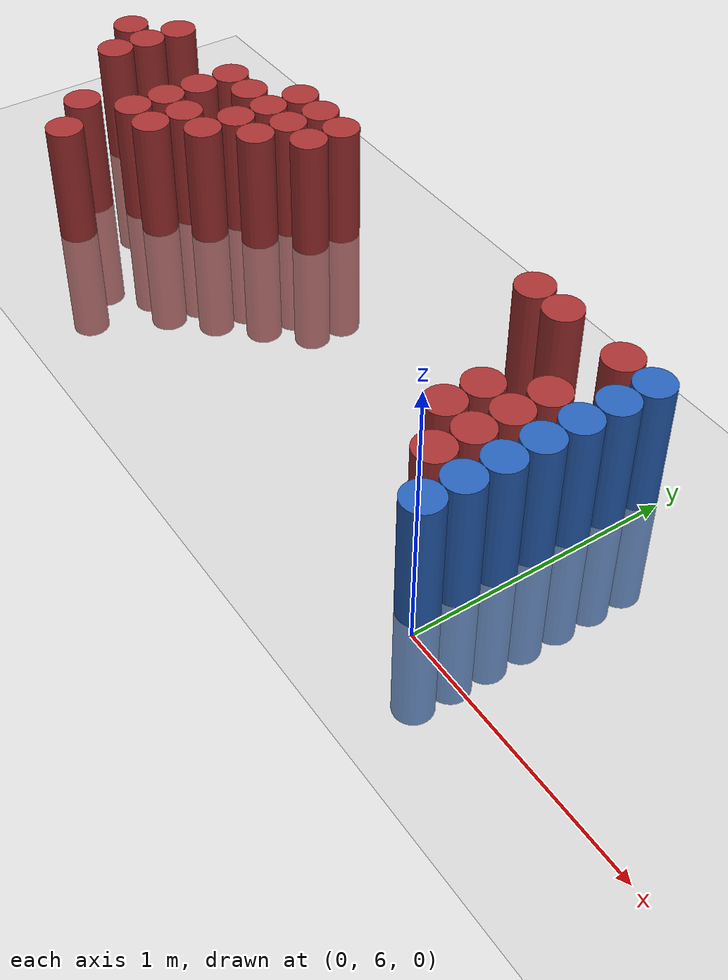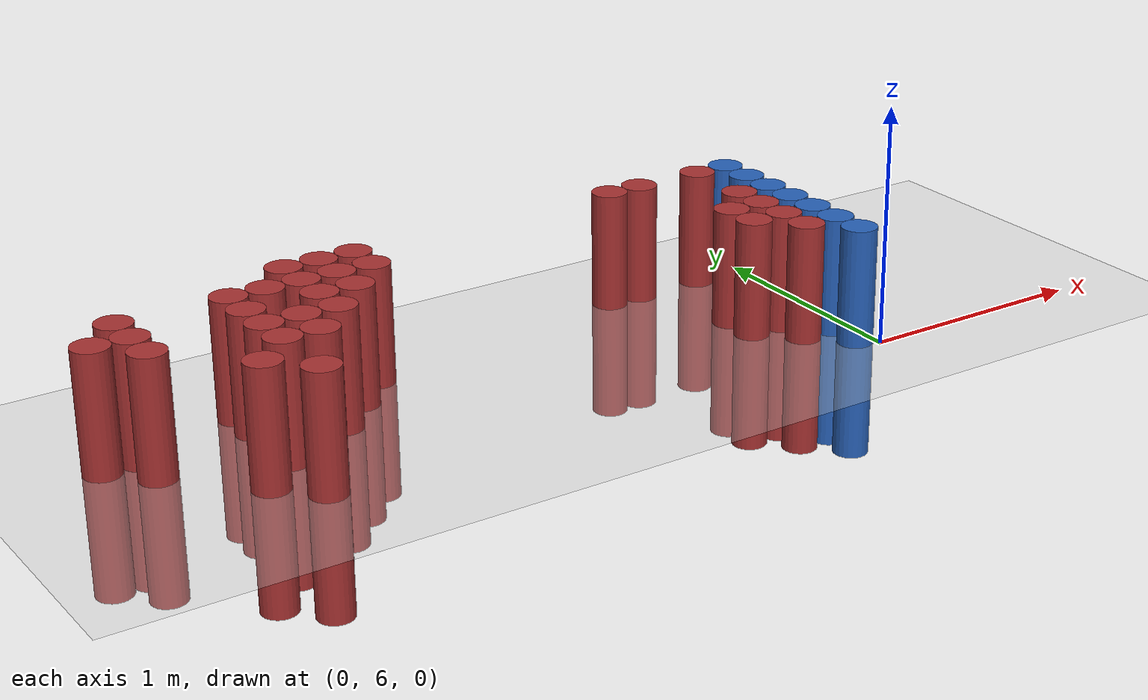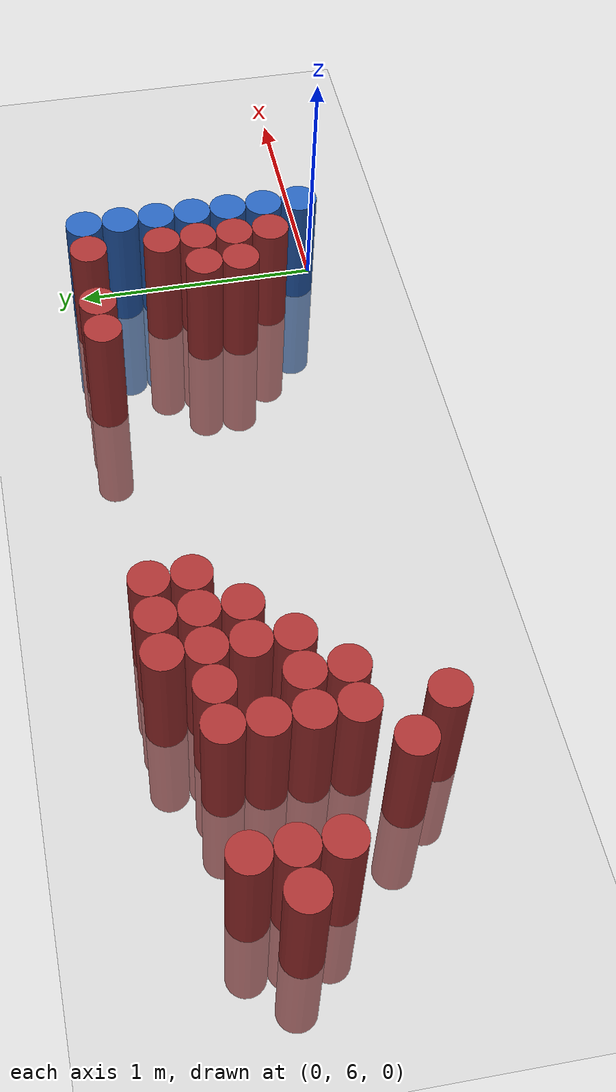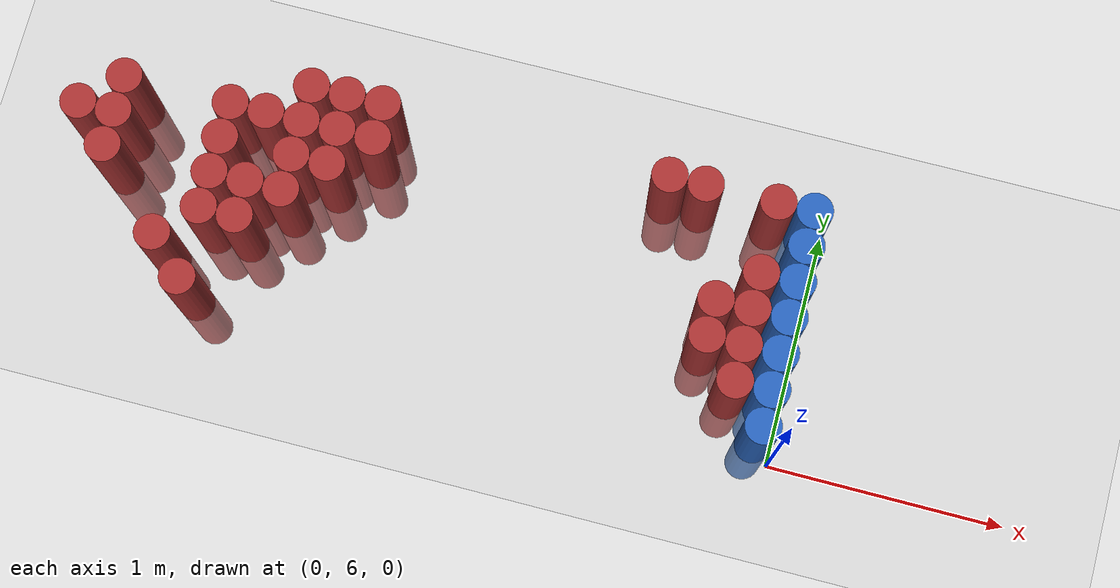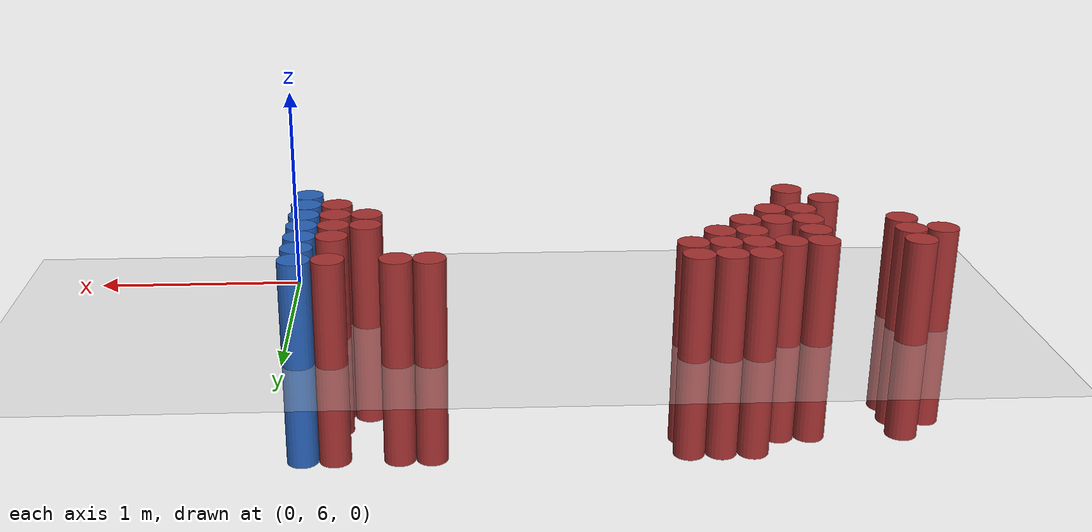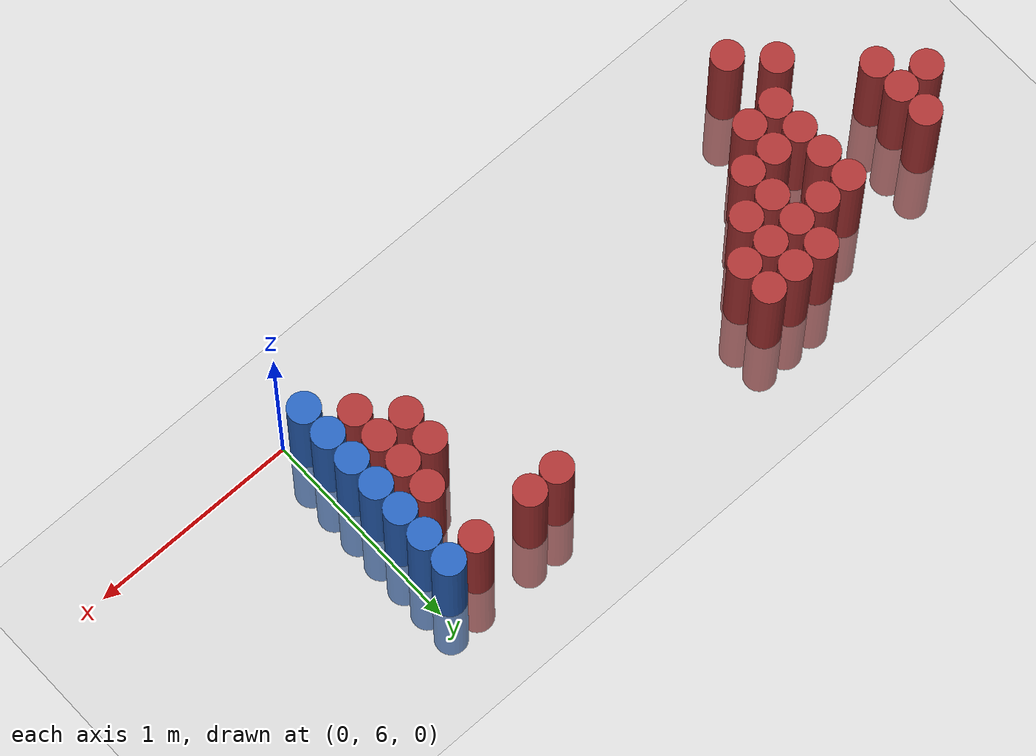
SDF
<sdf version="1.6">
 <world name="default">
  <model name="ground_plane">
   <static>1</static>
   <link name="link">
    <collision name="collision">
     <geometry><plane><normal>0 0 1</normal><size>100 100</size></plane></geometry>
     <surface><friction><ode><mu>100</mu><mu2>50</mu2></ode></friction></surface>
    </collision>
    <visual name="visual">
     <cast_shadows>0</cast_shadows>
     <geometry><plane><normal>0 0 1</normal><size>100 100</size></plane></geometry>
     <material>
      <script><uri>file://media/materials/scripts/gazebo.material</uri><name>Gazebo/Grey</name></script>
     </material>
    </visual>
   </link>
  </model>
  <model name="unit_cylinder_198">
   <static>1</static>
   <pose>-3.075000 6.675000 0.000000 0.000000 0.000000 0.000000</pose>
   <link name="link">
    <inertial>
     <mass>1</mass>
     <inertia><ixx>0.145833</ixx><ixy>0</ixy><ixz>0</ixz><iyy>0.145833</iyy><iyz>0</iyz><izz>0.125</izz></inertia>
    </inertial>
    <collision name="collision">
     <geometry><cylinder><radius>0.075000</radius><length>1</length></cylinder></geometry>
    </collision>
    <visual name="visual">
     <geometry><cylinder><radius>0.075000</radius><length>1</length></cylinder></geometry>
     <material>
      <ambient>0.648000 0.192000 0.192000 1</ambient>
      <diffuse>0.648000 0.192000 0.192000 1</diffuse>
     </material>
     <material>
      <script><name>Gazebo/Grey</name><uri>file://media/materials/scripts/gazebo.material</uri></script>
     </material>
    </visual>
    <sensor name="sensor_contact" type="contact"><contact><collision>collision</collision></contact></sensor>
   </link>
   <plugin filename="gz-sim-touchplugin-system" name="gz::sim::systems::TouchPlugin">
    <target>robot</target>
    <namespace>robot</namespace>
    <time>0.001</time>
    <enabled>true</enabled>
   </plugin>
  </model>
  <model name="unit_cylinder_204">
   <static>1</static>
   <pose>-2.925000 6.525000 0.000000 0.000000 0.000000 0.000000</pose>
   <link name="link">
    <inertial>
     <mass>1</mass>
     <inertia><ixx>0.145833</ixx><ixy>0</ixy><ixz>0</ixz><iyy>0.145833</iyy><iyz>0</iyz><izz>0.125</izz></inertia>
    </inertial>
    <collision name="collision">
     <geometry><cylinder><radius>0.075000</radius><length>1</length></cylinder></geometry>
    </collision>
    <visual name="visual">
     <geometry><cylinder><radius>0.075000</radius><length>1</length></cylinder></geometry>
     <material>
      <ambient>0.648000 0.192000 0.192000 1</ambient>
      <diffuse>0.648000 0.192000 0.192000 1</diffuse>
     </material>
     <material>
      <script><name>Gazebo/Grey</name><uri>file://media/materials/scripts/gazebo.material</uri></script>
     </material>
    </visual>
    <sensor name="sensor_contact" type="contact"><contact><collision>collision</collision></contact></sensor>
   </link>
   <plugin filename="gz-sim-touchplugin-system" name="gz::sim::systems::TouchPlugin">
    <target>robot</target>
    <namespace>robot</namespace>
    <time>0.001</time>
    <enabled>true</enabled>
   </plugin>
  </model>
  <model name="unit_cylinder_205">
   <static>1</static>
   <pose>-2.925000 6.675000 0.000000 0.000000 0.000000 0.000000</pose>
   <link name="link">
    <inertial>
     <mass>1</mass>
     <inertia><ixx>0.145833</ixx><ixy>0</ixy><ixz>0</ixz><iyy>0.145833</iyy><iyz>0</iyz><izz>0.125</izz></inertia>
    </inertial>
    <collision name="collision">
     <geometry><cylinder><radius>0.075000</radius><length>1</length></cylinder></geometry>
    </collision>
    <visual name="visual">
     <geometry><cylinder><radius>0.075000</radius><length>1</length></cylinder></geometry>
     <material>
      <ambient>0.648000 0.192000 0.192000 1</ambient>
      <diffuse>0.648000 0.192000 0.192000 1</diffuse>
     </material>
     <material>
      <script><name>Gazebo/Grey</name><uri>file://media/materials/scripts/gazebo.material</uri></script>
     </material>
    </visual>
    <sensor name="sensor_contact" type="contact"><contact><collision>collision</collision></contact></sensor>
   </link>
   <plugin filename="gz-sim-touchplugin-system" name="gz::sim::systems::TouchPlugin">
    <target>robot</target>
    <namespace>robot</namespace>
    <time>0.001</time>
    <enabled>true</enabled>
   </plugin>
  </model>
  <model name="unit_cylinder_206">
   <static>1</static>
   <pose>-2.925000 6.825000 0.000000 0.000000 0.000000 0.000000</pose>
   <link name="link">
    <inertial>
     <mass>1</mass>
     <inertia><ixx>0.145833</ixx><ixy>0</ixy><ixz>0</ixz><iyy>0.145833</iyy><iyz>0</iyz><izz>0.125</izz></inertia>
    </inertial>
    <collision name="collision">
     <geometry><cylinder><radius>0.075000</radius><length>1</length></cylinder></geometry>
    </collision>
    <visual name="visual">
     <geometry><cylinder><radius>0.075000</radius><length>1</length></cylinder></geometry>
     <material>
      <ambient>0.648000 0.192000 0.192000 1</ambient>
      <diffuse>0.648000 0.192000 0.192000 1</diffuse>
     </material>
     <material>
      <script><name>Gazebo/Grey</name><uri>file://media/materials/scripts/gazebo.material</uri></script>
     </material>
    </visual>
    <sensor name="sensor_contact" type="contact"><contact><collision>collision</collision></contact></sensor>
   </link>
   <plugin filename="gz-sim-touchplugin-system" name="gz::sim::systems::TouchPlugin">
    <target>robot</target>
    <namespace>robot</namespace>
    <time>0.001</time>
    <enabled>true</enabled>
   </plugin>
  </model>
  <model name="unit_cylinder_217">
   <static>1</static>
   <pose>-2.625000 6.225000 0.000000 0.000000 0.000000 0.000000</pose>
   <link name="link">
    <inertial>
     <mass>1</mass>
     <inertia><ixx>0.145833</ixx><ixy>0</ixy><ixz>0</ixz><iyy>0.145833</iyy><iyz>0</iyz><izz>0.125</izz></inertia>
    </inertial>
    <collision name="collision">
     <geometry><cylinder><radius>0.075000</radius><length>1</length></cylinder></geometry>
    </collision>
    <visual name="visual">
     <geometry><cylinder><radius>0.075000</radius><length>1</length></cylinder></geometry>
     <material>
      <ambient>0.648000 0.192000 0.192000 1</ambient>
      <diffuse>0.648000 0.192000 0.192000 1</diffuse>
     </material>
     <material>
      <script><name>Gazebo/Grey</name><uri>file://media/materials/scripts/gazebo.material</uri></script>
     </material>
    </visual>
    <sensor name="sensor_contact" type="contact"><contact><collision>collision</collision></contact></sensor>
   </link>
   <plugin filename="gz-sim-touchplugin-system" name="gz::sim::systems::TouchPlugin">
    <target>robot</target>
    <namespace>robot</namespace>
    <time>0.001</time>
    <enabled>true</enabled>
   </plugin>
  </model>
  <model name="unit_cylinder_228">
   <static>1</static>
   <pose>-2.475000 6.075000 0.000000 0.000000 0.000000 0.000000</pose>
   <link name="link">
    <inertial>
     <mass>1</mass>
     <inertia><ixx>0.145833</ixx><ixy>0</ixy><ixz>0</ixz><iyy>0.145833</iyy><iyz>0</iyz><izz>0.125</izz></inertia>
    </inertial>
    <collision name="collision">
     <geometry><cylinder><radius>0.075000</radius><length>1</length></cylinder></geometry>
    </collision>
    <visual name="visual">
     <geometry><cylinder><radius>0.075000</radius><length>1</length></cylinder></geometry>
     <material>
      <ambient>0.648000 0.192000 0.192000 1</ambient>
      <diffuse>0.648000 0.192000 0.192000 1</diffuse>
     </material>
     <material>
      <script><name>Gazebo/Grey</name><uri>file://media/materials/scripts/gazebo.material</uri></script>
     </material>
    </visual>
    <sensor name="sensor_contact" type="contact"><contact><collision>collision</collision></contact></sensor>
   </link>
   <plugin filename="gz-sim-touchplugin-system" name="gz::sim::systems::TouchPlugin">
    <target>robot</target>
    <namespace>robot</namespace>
    <time>0.001</time>
    <enabled>true</enabled>
   </plugin>
  </model>
  <model name="unit_cylinder_229">
   <static>1</static>
   <pose>-2.475000 6.375000 0.000000 0.000000 0.000000 0.000000</pose>
   <link name="link">
    <inertial>
     <mass>1</mass>
     <inertia><ixx>0.145833</ixx><ixy>0</ixy><ixz>0</ixz><iyy>0.145833</iyy><iyz>0</iyz><izz>0.125</izz></inertia>
    </inertial>
    <collision name="collision">
     <geometry><cylinder><radius>0.075000</radius><length>1</length></cylinder></geometry>
    </collision>
    <visual name="visual">
     <geometry><cylinder><radius>0.075000</radius><length>1</length></cylinder></geometry>
     <material>
      <ambient>0.648000 0.192000 0.192000 1</ambient>
      <diffuse>0.648000 0.192000 0.192000 1</diffuse>
     </material>
     <material>
      <script><name>Gazebo/Grey</name><uri>file://media/materials/scripts/gazebo.material</uri></script>
     </material>
    </visual>
    <sensor name="sensor_contact" type="contact"><contact><collision>collision</collision></contact></sensor>
   </link>
   <plugin filename="gz-sim-touchplugin-system" name="gz::sim::systems::TouchPlugin">
    <target>robot</target>
    <namespace>robot</namespace>
    <time>0.001</time>
    <enabled>true</enabled>
   </plugin>
  </model>
  <model name="unit_cylinder_230">
   <static>1</static>
   <pose>-2.475000 6.525000 0.000000 0.000000 0.000000 0.000000</pose>
   <link name="link">
    <inertial>
     <mass>1</mass>
     <inertia><ixx>0.145833</ixx><ixy>0</ixy><ixz>0</ixz><iyy>0.145833</iyy><iyz>0</iyz><izz>0.125</izz></inertia>
    </inertial>
    <collision name="collision">
     <geometry><cylinder><radius>0.075000</radius><length>1</length></cylinder></geometry>
    </collision>
    <visual name="visual">
     <geometry><cylinder><radius>0.075000</radius><length>1</length></cylinder></geometry>
     <material>
      <ambient>0.648000 0.192000 0.192000 1</ambient>
      <diffuse>0.648000 0.192000 0.192000 1</diffuse>
     </material>
     <material>
      <script><name>Gazebo/Grey</name><uri>file://media/materials/scripts/gazebo.material</uri></script>
     </material>
    </visual>
    <sensor name="sensor_contact" type="contact"><contact><collision>collision</collision></contact></sensor>
   </link>
   <plugin filename="gz-sim-touchplugin-system" name="gz::sim::systems::TouchPlugin">
    <target>robot</target>
    <namespace>robot</namespace>
    <time>0.001</time>
    <enabled>true</enabled>
   </plugin>
  </model>
  <model name="unit_cylinder_231">
   <static>1</static>
   <pose>-2.475000 6.675000 0.000000 0.000000 0.000000 0.000000</pose>
   <link name="link">
    <inertial>
     <mass>1</mass>
     <inertia><ixx>0.145833</ixx><ixy>0</ixy><ixz>0</ixz><iyy>0.145833</iyy><iyz>0</iyz><izz>0.125</izz></inertia>
    </inertial>
    <collision name="collision">
     <geometry><cylinder><radius>0.075000</radius><length>1</length></cylinder></geometry>
    </collision>
    <visual name="visual">
     <geometry><cylinder><radius>0.075000</radius><length>1</length></cylinder></geometry>
     <material>
      <ambient>0.648000 0.192000 0.192000 1</ambient>
      <diffuse>0.648000 0.192000 0.192000 1</diffuse>
     </material>
     <material>
      <script><name>Gazebo/Grey</name><uri>file://media/materials/scripts/gazebo.material</uri></script>
     </material>
    </visual>
    <sensor name="sensor_contact" type="contact"><contact><collision>collision</collision></contact></sensor>
   </link>
   <plugin filename="gz-sim-touchplugin-system" name="gz::sim::systems::TouchPlugin">
    <target>robot</target>
    <namespace>robot</namespace>
    <time>0.001</time>
    <enabled>true</enabled>
   </plugin>
  </model>
  <model name="unit_cylinder_232">
   <static>1</static>
   <pose>-2.475000 6.825000 0.000000 0.000000 0.000000 0.000000</pose>
   <link name="link">
    <inertial>
     <mass>1</mass>
     <inertia><ixx>0.145833</ixx><ixy>0</ixy><ixz>0</ixz><iyy>0.145833</iyy><iyz>0</iyz><izz>0.125</izz></inertia>
    </inertial>
    <collision name="collision">
     <geometry><cylinder><radius>0.075000</radius><length>1</length></cylinder></geometry>
    </collision>
    <visual name="visual">
     <geometry><cylinder><radius>0.075000</radius><length>1</length></cylinder></geometry>
     <material>
      <ambient>0.648000 0.192000 0.192000 1</ambient>
      <diffuse>0.648000 0.192000 0.192000 1</diffuse>
     </material>
     <material>
      <script><name>Gazebo/Grey</name><uri>file://media/materials/scripts/gazebo.material</uri></script>
     </material>
    </visual>
    <sensor name="sensor_contact" type="contact"><contact><collision>collision</collision></contact></sensor>
   </link>
   <plugin filename="gz-sim-touchplugin-system" name="gz::sim::systems::TouchPlugin">
    <target>robot</target>
    <namespace>robot</namespace>
    <time>0.001</time>
    <enabled>true</enabled>
   </plugin>
  </model>
  <model name="unit_cylinder_241">
   <static>1</static>
   <pose>-2.325000 6.375000 0.000000 0.000000 0.000000 0.000000</pose>
   <link name="link">
    <inertial>
     <mass>1</mass>
     <inertia><ixx>0.145833</ixx><ixy>0</ixy><ixz>0</ixz><iyy>0.145833</iyy><iyz>0</iyz><izz>0.125</izz></inertia>
    </inertial>
    <collision name="collision">
     <geometry><cylinder><radius>0.075000</radius><length>1</length></cylinder></geometry>
    </collision>
    <visual name="visual">
     <geometry><cylinder><radius>0.075000</radius><length>1</length></cylinder></geometry>
     <material>
      <ambient>0.648000 0.192000 0.192000 1</ambient>
      <diffuse>0.648000 0.192000 0.192000 1</diffuse>
     </material>
     <material>
      <script><name>Gazebo/Grey</name><uri>file://media/materials/scripts/gazebo.material</uri></script>
     </material>
    </visual>
    <sensor name="sensor_contact" type="contact"><contact><collision>collision</collision></contact></sensor>
   </link>
   <plugin filename="gz-sim-touchplugin-system" name="gz::sim::systems::TouchPlugin">
    <target>robot</target>
    <namespace>robot</namespace>
    <time>0.001</time>
    <enabled>true</enabled>
   </plugin>
  </model>
  <model name="unit_cylinder_242">
   <static>1</static>
   <pose>-2.325000 6.525000 0.000000 0.000000 0.000000 0.000000</pose>
   <link name="link">
    <inertial>
     <mass>1</mass>
     <inertia><ixx>0.145833</ixx><ixy>0</ixy><ixz>0</ixz><iyy>0.145833</iyy><iyz>0</iyz><izz>0.125</izz></inertia>
    </inertial>
    <collision name="collision">
     <geometry><cylinder><radius>0.075000</radius><length>1</length></cylinder></geometry>
    </collision>
    <visual name="visual">
     <geometry><cylinder><radius>0.075000</radius><length>1</length></cylinder></geometry>
     <material>
      <ambient>0.648000 0.192000 0.192000 1</ambient>
      <diffuse>0.648000 0.192000 0.192000 1</diffuse>
     </material>
     <material>
      <script><name>Gazebo/Grey</name><uri>file://media/materials/scripts/gazebo.material</uri></script>
     </material>
    </visual>
    <sensor name="sensor_contact" type="contact"><contact><collision>collision</collision></contact></sensor>
   </link>
   <plugin filename="gz-sim-touchplugin-system" name="gz::sim::systems::TouchPlugin">
    <target>robot</target>
    <namespace>robot</namespace>
    <time>0.001</time>
    <enabled>true</enabled>
   </plugin>
  </model>
  <model name="unit_cylinder_243">
   <static>1</static>
   <pose>-2.325000 6.825000 0.000000 0.000000 0.000000 0.000000</pose>
   <link name="link">
    <inertial>
     <mass>1</mass>
     <inertia><ixx>0.145833</ixx><ixy>0</ixy><ixz>0</ixz><iyy>0.145833</iyy><iyz>0</iyz><izz>0.125</izz></inertia>
    </inertial>
    <collision name="collision">
     <geometry><cylinder><radius>0.075000</radius><length>1</length></cylinder></geometry>
    </collision>
    <visual name="visual">
     <geometry><cylinder><radius>0.075000</radius><length>1</length></cylinder></geometry>
     <material>
      <ambient>0.648000 0.192000 0.192000 1</ambient>
      <diffuse>0.648000 0.192000 0.192000 1</diffuse>
     </material>
     <material>
      <script><name>Gazebo/Grey</name><uri>file://media/materials/scripts/gazebo.material</uri></script>
     </material>
    </visual>
    <sensor name="sensor_contact" type="contact"><contact><collision>collision</collision></contact></sensor>
   </link>
   <plugin filename="gz-sim-touchplugin-system" name="gz::sim::systems::TouchPlugin">
    <target>robot</target>
    <namespace>robot</namespace>
    <time>0.001</time>
    <enabled>true</enabled>
   </plugin>
  </model>
  <model name="unit_cylinder_249">
   <static>1</static>
   <pose>-2.175000 6.525000 0.000000 0.000000 0.000000 0.000000</pose>
   <link name="link">
    <inertial>
     <mass>1</mass>
     <inertia><ixx>0.145833</ixx><ixy>0</ixy><ixz>0</ixz><iyy>0.145833</iyy><iyz>0</iyz><izz>0.125</izz></inertia>
    </inertial>
    <collision name="collision">
     <geometry><cylinder><radius>0.075000</radius><length>1</length></cylinder></geometry>
    </collision>
    <visual name="visual">
     <geometry><cylinder><radius>0.075000</radius><length>1</length></cylinder></geometry>
     <material>
      <ambient>0.648000 0.192000 0.192000 1</ambient>
      <diffuse>0.648000 0.192000 0.192000 1</diffuse>
     </material>
     <material>
      <script><name>Gazebo/Grey</name><uri>file://media/materials/scripts/gazebo.material</uri></script>
     </material>
    </visual>
    <sensor name="sensor_contact" type="contact"><contact><collision>collision</collision></contact></sensor>
   </link>
   <plugin filename="gz-sim-touchplugin-system" name="gz::sim::systems::TouchPlugin">
    <target>robot</target>
    <namespace>robot</namespace>
    <time>0.001</time>
    <enabled>true</enabled>
   </plugin>
  </model>
  <model name="unit_cylinder_250">
   <static>1</static>
   <pose>-2.175000 6.675000 0.000000 0.000000 0.000000 0.000000</pose>
   <link name="link">
    <inertial>
     <mass>1</mass>
     <inertia><ixx>0.145833</ixx><ixy>0</ixy><ixz>0</ixz><iyy>0.145833</iyy><iyz>0</iyz><izz>0.125</izz></inertia>
    </inertial>
    <collision name="collision">
     <geometry><cylinder><radius>0.075000</radius><length>1</length></cylinder></geometry>
    </collision>
    <visual name="visual">
     <geometry><cylinder><radius>0.075000</radius><length>1</length></cylinder></geometry>
     <material>
      <ambient>0.648000 0.192000 0.192000 1</ambient>
      <diffuse>0.648000 0.192000 0.192000 1</diffuse>
     </material>
     <material>
      <script><name>Gazebo/Grey</name><uri>file://media/materials/scripts/gazebo.material</uri></script>
     </material>
    </visual>
    <sensor name="sensor_contact" type="contact"><contact><collision>collision</collision></contact></sensor>
   </link>
   <plugin filename="gz-sim-touchplugin-system" name="gz::sim::systems::TouchPlugin">
    <target>robot</target>
    <namespace>robot</namespace>
    <time>0.001</time>
    <enabled>true</enabled>
   </plugin>
  </model>
  <model name="unit_cylinder_251">
   <static>1</static>
   <pose>-2.175000 6.825000 0.000000 0.000000 0.000000 0.000000</pose>
   <link name="link">
    <inertial>
     <mass>1</mass>
     <inertia><ixx>0.145833</ixx><ixy>0</ixy><ixz>0</ixz><iyy>0.145833</iyy><iyz>0</iyz><izz>0.125</izz></inertia>
    </inertial>
    <collision name="collision">
     <geometry><cylinder><radius>0.075000</radius><length>1</length></cylinder></geometry>
    </collision>
    <visual name="visual">
     <geometry><cylinder><radius>0.075000</radius><length>1</length></cylinder></geometry>
     <material>
      <ambient>0.648000 0.192000 0.192000 1</ambient>
      <diffuse>0.648000 0.192000 0.192000 1</diffuse>
     </material>
     <material>
      <script><name>Gazebo/Grey</name><uri>file://media/materials/scripts/gazebo.material</uri></script>
     </material>
    </visual>
    <sensor name="sensor_contact" type="contact"><contact><collision>collision</collision></contact></sensor>
   </link>
   <plugin filename="gz-sim-touchplugin-system" name="gz::sim::systems::TouchPlugin">
    <target>robot</target>
    <namespace>robot</namespace>
    <time>0.001</time>
    <enabled>true</enabled>
   </plugin>
  </model>
  <model name="unit_cylinder_252">
   <static>1</static>
   <pose>-2.175000 6.975000 0.000000 0.000000 0.000000 0.000000</pose>
   <link name="link">
    <inertial>
     <mass>1</mass>
     <inertia><ixx>0.145833</ixx><ixy>0</ixy><ixz>0</ixz><iyy>0.145833</iyy><iyz>0</iyz><izz>0.125</izz></inertia>
    </inertial>
    <collision name="collision">
     <geometry><cylinder><radius>0.075000</radius><length>1</length></cylinder></geometry>
    </collision>
    <visual name="visual">
     <geometry><cylinder><radius>0.075000</radius><length>1</length></cylinder></geometry>
     <material>
      <ambient>0.648000 0.192000 0.192000 1</ambient>
      <diffuse>0.648000 0.192000 0.192000 1</diffuse>
     </material>
     <material>
      <script><name>Gazebo/Grey</name><uri>file://media/materials/scripts/gazebo.material</uri></script>
     </material>
    </visual>
    <sensor name="sensor_contact" type="contact"><contact><collision>collision</collision></contact></sensor>
   </link>
   <plugin filename="gz-sim-touchplugin-system" name="gz::sim::systems::TouchPlugin">
    <target>robot</target>
    <namespace>robot</namespace>
    <time>0.001</time>
    <enabled>true</enabled>
   </plugin>
  </model>
  <model name="unit_cylinder_254">
   <static>1</static>
   <pose>-2.025000 6.675000 0.000000 0.000000 0.000000 0.000000</pose>
   <link name="link">
    <inertial>
     <mass>1</mass>
     <inertia><ixx>0.145833</ixx><ixy>0</ixy><ixz>0</ixz><iyy>0.145833</iyy><iyz>0</iyz><izz>0.125</izz></inertia>
    </inertial>
    <collision name="collision">
     <geometry><cylinder><radius>0.075000</radius><length>1</length></cylinder></geometry>
    </collision>
    <visual name="visual">
     <geometry><cylinder><radius>0.075000</radius><length>1</length></cylinder></geometry>
     <material>
      <ambient>0.648000 0.192000 0.192000 1</ambient>
      <diffuse>0.648000 0.192000 0.192000 1</diffuse>
     </material>
     <material>
      <script><name>Gazebo/Grey</name><uri>file://media/materials/scripts/gazebo.material</uri></script>
     </material>
    </visual>
    <sensor name="sensor_contact" type="contact"><contact><collision>collision</collision></contact></sensor>
   </link>
   <plugin filename="gz-sim-touchplugin-system" name="gz::sim::systems::TouchPlugin">
    <target>robot</target>
    <namespace>robot</namespace>
    <time>0.001</time>
    <enabled>true</enabled>
   </plugin>
  </model>
  <model name="unit_cylinder_255">
   <static>1</static>
   <pose>-2.025000 6.825000 0.000000 0.000000 0.000000 0.000000</pose>
   <link name="link">
    <inertial>
     <mass>1</mass>
     <inertia><ixx>0.145833</ixx><ixy>0</ixy><ixz>0</ixz><iyy>0.145833</iyy><iyz>0</iyz><izz>0.125</izz></inertia>
    </inertial>
    <collision name="collision">
     <geometry><cylinder><radius>0.075000</radius><length>1</length></cylinder></geometry>
    </collision>
    <visual name="visual">
     <geometry><cylinder><radius>0.075000</radius><length>1</length></cylinder></geometry>
     <material>
      <ambient>0.648000 0.192000 0.192000 1</ambient>
      <diffuse>0.648000 0.192000 0.192000 1</diffuse>
     </material>
     <material>
      <script><name>Gazebo/Grey</name><uri>file://media/materials/scripts/gazebo.material</uri></script>
     </material>
    </visual>
    <sensor name="sensor_contact" type="contact"><contact><collision>collision</collision></contact></sensor>
   </link>
   <plugin filename="gz-sim-touchplugin-system" name="gz::sim::systems::TouchPlugin">
    <target>robot</target>
    <namespace>robot</namespace>
    <time>0.001</time>
    <enabled>true</enabled>
   </plugin>
  </model>
  <model name="unit_cylinder_256">
   <static>1</static>
   <pose>-2.025000 6.975000 0.000000 0.000000 0.000000 0.000000</pose>
   <link name="link">
    <inertial>
     <mass>1</mass>
     <inertia><ixx>0.145833</ixx><ixy>0</ixy><ixz>0</ixz><iyy>0.145833</iyy><iyz>0</iyz><izz>0.125</izz></inertia>
    </inertial>
    <collision name="collision">
     <geometry><cylinder><radius>0.075000</radius><length>1</length></cylinder></geometry>
    </collision>
    <visual name="visual">
     <geometry><cylinder><radius>0.075000</radius><length>1</length></cylinder></geometry>
     <material>
      <ambient>0.648000 0.192000 0.192000 1</ambient>
      <diffuse>0.648000 0.192000 0.192000 1</diffuse>
     </material>
     <material>
      <script><name>Gazebo/Grey</name><uri>file://media/materials/scripts/gazebo.material</uri></script>
     </material>
    </visual>
    <sensor name="sensor_contact" type="contact"><contact><collision>collision</collision></contact></sensor>
   </link>
   <plugin filename="gz-sim-touchplugin-system" name="gz::sim::systems::TouchPlugin">
    <target>robot</target>
    <namespace>robot</namespace>
    <time>0.001</time>
    <enabled>true</enabled>
   </plugin>
  </model>
  <model name="unit_cylinder_258">
   <static>1</static>
   <pose>-1.875000 6.825000 0.000000 0.000000 0.000000 0.000000</pose>
   <link name="link">
    <inertial>
     <mass>1</mass>
     <inertia><ixx>0.145833</ixx><ixy>0</ixy><ixz>0</ixz><iyy>0.145833</iyy><iyz>0</iyz><izz>0.125</izz></inertia>
    </inertial>
    <collision name="collision">
     <geometry><cylinder><radius>0.075000</radius><length>1</length></cylinder></geometry>
    </collision>
    <visual name="visual">
     <geometry><cylinder><radius>0.075000</radius><length>1</length></cylinder></geometry>
     <material>
      <ambient>0.648000 0.192000 0.192000 1</ambient>
      <diffuse>0.648000 0.192000 0.192000 1</diffuse>
     </material>
     <material>
      <script><name>Gazebo/Grey</name><uri>file://media/materials/scripts/gazebo.material</uri></script>
     </material>
    </visual>
    <sensor name="sensor_contact" type="contact"><contact><collision>collision</collision></contact></sensor>
   </link>
   <plugin filename="gz-sim-touchplugin-system" name="gz::sim::systems::TouchPlugin">
    <target>robot</target>
    <namespace>robot</namespace>
    <time>0.001</time>
    <enabled>true</enabled>
   </plugin>
  </model>
  <model name="unit_cylinder_259">
   <static>1</static>
   <pose>-1.875000 6.975000 0.000000 0.000000 0.000000 0.000000</pose>
   <link name="link">
    <inertial>
     <mass>1</mass>
     <inertia><ixx>0.145833</ixx><ixy>0</ixy><ixz>0</ixz><iyy>0.145833</iyy><iyz>0</iyz><izz>0.125</izz></inertia>
    </inertial>
    <collision name="collision">
     <geometry><cylinder><radius>0.075000</radius><length>1</length></cylinder></geometry>
    </collision>
    <visual name="visual">
     <geometry><cylinder><radius>0.075000</radius><length>1</length></cylinder></geometry>
     <material>
      <ambient>0.648000 0.192000 0.192000 1</ambient>
      <diffuse>0.648000 0.192000 0.192000 1</diffuse>
     </material>
     <material>
      <script><name>Gazebo/Grey</name><uri>file://media/materials/scripts/gazebo.material</uri></script>
     </material>
    </visual>
    <sensor name="sensor_contact" type="contact"><contact><collision>collision</collision></contact></sensor>
   </link>
   <plugin filename="gz-sim-touchplugin-system" name="gz::sim::systems::TouchPlugin">
    <target>robot</target>
    <namespace>robot</namespace>
    <time>0.001</time>
    <enabled>true</enabled>
   </plugin>
  </model>
  <model name="unit_cylinder_277">
   <static>1</static>
   <pose>-0.675000 6.975000 0.000000 0.000000 0.000000 0.000000</pose>
   <link name="link">
    <inertial>
     <mass>1</mass>
     <inertia><ixx>0.145833</ixx><ixy>0</ixy><ixz>0</ixz><iyy>0.145833</iyy><iyz>0</iyz><izz>0.125</izz></inertia>
    </inertial>
    <collision name="collision">
     <geometry><cylinder><radius>0.075000</radius><length>1</length></cylinder></geometry>
    </collision>
    <visual name="visual">
     <geometry><cylinder><radius>0.075000</radius><length>1</length></cylinder></geometry>
     <material>
      <ambient>0.648000 0.192000 0.192000 1</ambient>
      <diffuse>0.648000 0.192000 0.192000 1</diffuse>
     </material>
     <material>
      <script><name>Gazebo/Grey</name><uri>file://media/materials/scripts/gazebo.material</uri></script>
     </material>
    </visual>
    <sensor name="sensor_contact" type="contact"><contact><collision>collision</collision></contact></sensor>
   </link>
   <plugin filename="gz-sim-touchplugin-system" name="gz::sim::systems::TouchPlugin">
    <target>robot</target>
    <namespace>robot</namespace>
    <time>0.001</time>
    <enabled>true</enabled>
   </plugin>
  </model>
  <model name="unit_cylinder_280">
   <static>1</static>
   <pose>-0.525000 6.975000 0.000000 0.000000 0.000000 0.000000</pose>
   <link name="link">
    <inertial>
     <mass>1</mass>
     <inertia><ixx>0.145833</ixx><ixy>0</ixy><ixz>0</ixz><iyy>0.145833</iyy><iyz>0</iyz><izz>0.125</izz></inertia>
    </inertial>
    <collision name="collision">
     <geometry><cylinder><radius>0.075000</radius><length>1</length></cylinder></geometry>
    </collision>
    <visual name="visual">
     <geometry><cylinder><radius>0.075000</radius><length>1</length></cylinder></geometry>
     <material>
      <ambient>0.648000 0.192000 0.192000 1</ambient>
      <diffuse>0.648000 0.192000 0.192000 1</diffuse>
     </material>
     <material>
      <script><name>Gazebo/Grey</name><uri>file://media/materials/scripts/gazebo.material</uri></script>
     </material>
    </visual>
    <sensor name="sensor_contact" type="contact"><contact><collision>collision</collision></contact></sensor>
   </link>
   <plugin filename="gz-sim-touchplugin-system" name="gz::sim::systems::TouchPlugin">
    <target>robot</target>
    <namespace>robot</namespace>
    <time>0.001</time>
    <enabled>true</enabled>
   </plugin>
  </model>
  <model name="unit_cylinder_285">
   <static>1</static>
   <pose>-0.375000 6.375000 0.000000 0.000000 0.000000 0.000000</pose>
   <link name="link">
    <inertial>
     <mass>1</mass>
     <inertia><ixx>0.145833</ixx><ixy>0</ixy><ixz>0</ixz><iyy>0.145833</iyy><iyz>0</iyz><izz>0.125</izz></inertia>
    </inertial>
    <collision name="collision">
     <geometry><cylinder><radius>0.075000</radius><length>1</length></cylinder></geometry>
    </collision>
    <visual name="visual">
     <geometry><cylinder><radius>0.075000</radius><length>1</length></cylinder></geometry>
     <material>
      <ambient>0.648000 0.192000 0.192000 1</ambient>
      <diffuse>0.648000 0.192000 0.192000 1</diffuse>
     </material>
     <material>
      <script><name>Gazebo/Grey</name><uri>file://media/materials/scripts/gazebo.material</uri></script>
     </material>
    </visual>
    <sensor name="sensor_contact" type="contact"><contact><collision>collision</collision></contact></sensor>
   </link>
   <plugin filename="gz-sim-touchplugin-system" name="gz::sim::systems::TouchPlugin">
    <target>robot</target>
    <namespace>robot</namespace>
    <time>0.001</time>
    <enabled>true</enabled>
   </plugin>
  </model>
  <model name="unit_cylinder_286">
   <static>1</static>
   <pose>-0.375000 6.525000 0.000000 0.000000 0.000000 0.000000</pose>
   <link name="link">
    <inertial>
     <mass>1</mass>
     <inertia><ixx>0.145833</ixx><ixy>0</ixy><ixz>0</ixz><iyy>0.145833</iyy><iyz>0</iyz><izz>0.125</izz></inertia>
    </inertial>
    <collision name="collision">
     <geometry><cylinder><radius>0.075000</radius><length>1</length></cylinder></geometry>
    </collision>
    <visual name="visual">
     <geometry><cylinder><radius>0.075000</radius><length>1</length></cylinder></geometry>
     <material>
      <ambient>0.648000 0.192000 0.192000 1</ambient>
      <diffuse>0.648000 0.192000 0.192000 1</diffuse>
     </material>
     <material>
      <script><name>Gazebo/Grey</name><uri>file://media/materials/scripts/gazebo.material</uri></script>
     </material>
    </visual>
    <sensor name="sensor_contact" type="contact"><contact><collision>collision</collision></contact></sensor>
   </link>
   <plugin filename="gz-sim-touchplugin-system" name="gz::sim::systems::TouchPlugin">
    <target>robot</target>
    <namespace>robot</namespace>
    <time>0.001</time>
    <enabled>true</enabled>
   </plugin>
  </model>
  <model name="unit_cylinder_295">
   <static>1</static>
   <pose>-0.225000 6.225000 0.000000 0.000000 0.000000 0.000000</pose>
   <link name="link">
    <inertial>
     <mass>1</mass>
     <inertia><ixx>0.145833</ixx><ixy>0</ixy><ixz>0</ixz><iyy>0.145833</iyy><iyz>0</iyz><izz>0.125</izz></inertia>
    </inertial>
    <collision name="collision">
     <geometry><cylinder><radius>0.075000</radius><length>1</length></cylinder></geometry>
    </collision>
    <visual name="visual">
     <geometry><cylinder><radius>0.075000</radius><length>1</length></cylinder></geometry>
     <material>
      <ambient>0.648000 0.192000 0.192000 1</ambient>
      <diffuse>0.648000 0.192000 0.192000 1</diffuse>
     </material>
     <material>
      <script><name>Gazebo/Grey</name><uri>file://media/materials/scripts/gazebo.material</uri></script>
     </material>
    </visual>
    <sensor name="sensor_contact" type="contact"><contact><collision>collision</collision></contact></sensor>
   </link>
   <plugin filename="gz-sim-touchplugin-system" name="gz::sim::systems::TouchPlugin">
    <target>robot</target>
    <namespace>robot</namespace>
    <time>0.001</time>
    <enabled>true</enabled>
   </plugin>
  </model>
  <model name="unit_cylinder_296">
   <static>1</static>
   <pose>-0.225000 6.375000 0.000000 0.000000 0.000000 0.000000</pose>
   <link name="link">
    <inertial>
     <mass>1</mass>
     <inertia><ixx>0.145833</ixx><ixy>0</ixy><ixz>0</ixz><iyy>0.145833</iyy><iyz>0</iyz><izz>0.125</izz></inertia>
    </inertial>
    <collision name="collision">
     <geometry><cylinder><radius>0.075000</radius><length>1</length></cylinder></geometry>
    </collision>
    <visual name="visual">
     <geometry><cylinder><radius>0.075000</radius><length>1</length></cylinder></geometry>
     <material>
      <ambient>0.648000 0.192000 0.192000 1</ambient>
      <diffuse>0.648000 0.192000 0.192000 1</diffuse>
     </material>
     <material>
      <script><name>Gazebo/Grey</name><uri>file://media/materials/scripts/gazebo.material</uri></script>
     </material>
    </visual>
    <sensor name="sensor_contact" type="contact"><contact><collision>collision</collision></contact></sensor>
   </link>
   <plugin filename="gz-sim-touchplugin-system" name="gz::sim::systems::TouchPlugin">
    <target>robot</target>
    <namespace>robot</namespace>
    <time>0.001</time>
    <enabled>true</enabled>
   </plugin>
  </model>
  <model name="unit_cylinder_297">
   <static>1</static>
   <pose>-0.225000 6.525000 0.000000 0.000000 0.000000 0.000000</pose>
   <link name="link">
    <inertial>
     <mass>1</mass>
     <inertia><ixx>0.145833</ixx><ixy>0</ixy><ixz>0</ixz><iyy>0.145833</iyy><iyz>0</iyz><izz>0.125</izz></inertia>
    </inertial>
    <collision name="collision">
     <geometry><cylinder><radius>0.075000</radius><length>1</length></cylinder></geometry>
    </collision>
    <visual name="visual">
     <geometry><cylinder><radius>0.075000</radius><length>1</length></cylinder></geometry>
     <material>
      <ambient>0.648000 0.192000 0.192000 1</ambient>
      <diffuse>0.648000 0.192000 0.192000 1</diffuse>
     </material>
     <material>
      <script><name>Gazebo/Grey</name><uri>file://media/materials/scripts/gazebo.material</uri></script>
     </material>
    </visual>
    <sensor name="sensor_contact" type="contact"><contact><collision>collision</collision></contact></sensor>
   </link>
   <plugin filename="gz-sim-touchplugin-system" name="gz::sim::systems::TouchPlugin">
    <target>robot</target>
    <namespace>robot</namespace>
    <time>0.001</time>
    <enabled>true</enabled>
   </plugin>
  </model>
  <model name="unit_cylinder_298">
   <static>1</static>
   <pose>-0.225000 6.675000 0.000000 0.000000 0.000000 0.000000</pose>
   <link name="link">
    <inertial>
     <mass>1</mass>
     <inertia><ixx>0.145833</ixx><ixy>0</ixy><ixz>0</ixz><iyy>0.145833</iyy><iyz>0</iyz><izz>0.125</izz></inertia>
    </inertial>
    <collision name="collision">
     <geometry><cylinder><radius>0.075000</radius><length>1</length></cylinder></geometry>
    </collision>
    <visual name="visual">
     <geometry><cylinder><radius>0.075000</radius><length>1</length></cylinder></geometry>
     <material>
      <ambient>0.648000 0.192000 0.192000 1</ambient>
      <diffuse>0.648000 0.192000 0.192000 1</diffuse>
     </material>
     <material>
      <script><name>Gazebo/Grey</name><uri>file://media/materials/scripts/gazebo.material</uri></script>
     </material>
    </visual>
    <sensor name="sensor_contact" type="contact"><contact><collision>collision</collision></contact></sensor>
   </link>
   <plugin filename="gz-sim-touchplugin-system" name="gz::sim::systems::TouchPlugin">
    <target>robot</target>
    <namespace>robot</namespace>
    <time>0.001</time>
    <enabled>true</enabled>
   </plugin>
  </model>
  <model name="unit_cylinder_299">
   <static>1</static>
   <pose>-0.225000 6.975000 0.000000 0.000000 0.000000 0.000000</pose>
   <link name="link">
    <inertial>
     <mass>1</mass>
     <inertia><ixx>0.145833</ixx><ixy>0</ixy><ixz>0</ixz><iyy>0.145833</iyy><iyz>0</iyz><izz>0.125</izz></inertia>
    </inertial>
    <collision name="collision">
     <geometry><cylinder><radius>0.075000</radius><length>1</length></cylinder></geometry>
    </collision>
    <visual name="visual">
     <geometry><cylinder><radius>0.075000</radius><length>1</length></cylinder></geometry>
     <material>
      <ambient>0.648000 0.192000 0.192000 1</ambient>
      <diffuse>0.648000 0.192000 0.192000 1</diffuse>
     </material>
     <material>
      <script><name>Gazebo/Grey</name><uri>file://media/materials/scripts/gazebo.material</uri></script>
     </material>
    </visual>
    <sensor name="sensor_contact" type="contact"><contact><collision>collision</collision></contact></sensor>
   </link>
   <plugin filename="gz-sim-touchplugin-system" name="gz::sim::systems::TouchPlugin">
    <target>robot</target>
    <namespace>robot</namespace>
    <time>0.001</time>
    <enabled>true</enabled>
   </plugin>
  </model>
  <model name="unit_cylinder_314">
   <static>1</static>
   <pose>-0.075000 6.075000 0.000000 0.000000 0.000000 0.000000</pose>
   <link name="link">
    <inertial>
     <mass>1</mass>
     <inertia><ixx>0.145833</ixx><ixy>0</ixy><ixz>0</ixz><iyy>0.145833</iyy><iyz>0</iyz><izz>0.125</izz></inertia>
    </inertial>
    <collision name="collision">
     <geometry><cylinder><radius>0.075000</radius><length>1</length></cylinder></geometry>
    </collision>
    <visual name="visual">
     <geometry><cylinder><radius>0.075000</radius><length>1</length></cylinder></geometry>
     <material>
      <ambient>0.152000 0.379000 0.720000 1</ambient>
      <diffuse>0.152000 0.379000 0.720000 1</diffuse>
     </material>
     <material>
      <script><name>Gazebo/Grey</name><uri>file://media/materials/scripts/gazebo.material</uri></script>
     </material>
    </visual>
    <sensor name="sensor_contact" type="contact"><contact><collision>collision</collision></contact></sensor>
   </link>
   <plugin filename="gz-sim-touchplugin-system" name="gz::sim::systems::TouchPlugin">
    <target>robot</target>
    <namespace>robot</namespace>
    <time>0.001</time>
    <enabled>true</enabled>
   </plugin>
  </model>
  <model name="unit_cylinder_315">
   <static>1</static>
   <pose>-0.075000 6.225000 0.000000 0.000000 0.000000 0.000000</pose>
   <link name="link">
    <inertial>
     <mass>1</mass>
     <inertia><ixx>0.145833</ixx><ixy>0</ixy><ixz>0</ixz><iyy>0.145833</iyy><iyz>0</iyz><izz>0.125</izz></inertia>
    </inertial>
    <collision name="collision">
     <geometry><cylinder><radius>0.075000</radius><length>1</length></cylinder></geometry>
    </collision>
    <visual name="visual">
     <geometry><cylinder><radius>0.075000</radius><length>1</length></cylinder></geometry>
     <material>
      <ambient>0.152000 0.379000 0.720000 1</ambient>
      <diffuse>0.152000 0.379000 0.720000 1</diffuse>
     </material>
     <material>
      <script><name>Gazebo/Grey</name><uri>file://media/materials/scripts/gazebo.material</uri></script>
     </material>
    </visual>
    <sensor name="sensor_contact" type="contact"><contact><collision>collision</collision></contact></sensor>
   </link>
   <plugin filename="gz-sim-touchplugin-system" name="gz::sim::systems::TouchPlugin">
    <target>robot</target>
    <namespace>robot</namespace>
    <time>0.001</time>
    <enabled>true</enabled>
   </plugin>
  </model>
  <model name="unit_cylinder_316">
   <static>1</static>
   <pose>-0.075000 6.375000 0.000000 0.000000 0.000000 0.000000</pose>
   <link name="link">
    <inertial>
     <mass>1</mass>
     <inertia><ixx>0.145833</ixx><ixy>0</ixy><ixz>0</ixz><iyy>0.145833</iyy><iyz>0</iyz><izz>0.125</izz></inertia>
    </inertial>
    <collision name="collision">
     <geometry><cylinder><radius>0.075000</radius><length>1</length></cylinder></geometry>
    </collision>
    <visual name="visual">
     <geometry><cylinder><radius>0.075000</radius><length>1</length></cylinder></geometry>
     <material>
      <ambient>0.152000 0.379000 0.720000 1</ambient>
      <diffuse>0.152000 0.379000 0.720000 1</diffuse>
     </material>
     <material>
      <script><name>Gazebo/Grey</name><uri>file://media/materials/scripts/gazebo.material</uri></script>
     </material>
    </visual>
    <sensor name="sensor_contact" type="contact"><contact><collision>collision</collision></contact></sensor>
   </link>
   <plugin filename="gz-sim-touchplugin-system" name="gz::sim::systems::TouchPlugin">
    <target>robot</target>
    <namespace>robot</namespace>
    <time>0.001</time>
    <enabled>true</enabled>
   </plugin>
  </model>
  <model name="unit_cylinder_317">
   <static>1</static>
   <pose>-0.075000 6.525000 0.000000 0.000000 0.000000 0.000000</pose>
   <link name="link">
    <inertial>
     <mass>1</mass>
     <inertia><ixx>0.145833</ixx><ixy>0</ixy><ixz>0</ixz><iyy>0.145833</iyy><iyz>0</iyz><izz>0.125</izz></inertia>
    </inertial>
    <collision name="collision">
     <geometry><cylinder><radius>0.075000</radius><length>1</length></cylinder></geometry>
    </collision>
    <visual name="visual">
     <geometry><cylinder><radius>0.075000</radius><length>1</length></cylinder></geometry>
     <material>
      <ambient>0.152000 0.379000 0.720000 1</ambient>
      <diffuse>0.152000 0.379000 0.720000 1</diffuse>
     </material>
     <material>
      <script><name>Gazebo/Grey</name><uri>file://media/materials/scripts/gazebo.material</uri></script>
     </material>
    </visual>
    <sensor name="sensor_contact" type="contact"><contact><collision>collision</collision></contact></sensor>
   </link>
   <plugin filename="gz-sim-touchplugin-system" name="gz::sim::systems::TouchPlugin">
    <target>robot</target>
    <namespace>robot</namespace>
    <time>0.001</time>
    <enabled>true</enabled>
   </plugin>
  </model>
  <model name="unit_cylinder_318">
   <static>1</static>
   <pose>-0.075000 6.675000 0.000000 0.000000 0.000000 0.000000</pose>
   <link name="link">
    <inertial>
     <mass>1</mass>
     <inertia><ixx>0.145833</ixx><ixy>0</ixy><ixz>0</ixz><iyy>0.145833</iyy><iyz>0</iyz><izz>0.125</izz></inertia>
    </inertial>
    <collision name="collision">
     <geometry><cylinder><radius>0.075000</radius><length>1</length></cylinder></geometry>
    </collision>
    <visual name="visual">
     <geometry><cylinder><radius>0.075000</radius><length>1</length></cylinder></geometry>
     <material>
      <ambient>0.152000 0.379000 0.720000 1</ambient>
      <diffuse>0.152000 0.379000 0.720000 1</diffuse>
     </material>
     <material>
      <script><name>Gazebo/Grey</name><uri>file://media/materials/scripts/gazebo.material</uri></script>
     </material>
    </visual>
    <sensor name="sensor_contact" type="contact"><contact><collision>collision</collision></contact></sensor>
   </link>
   <plugin filename="gz-sim-touchplugin-system" name="gz::sim::systems::TouchPlugin">
    <target>robot</target>
    <namespace>robot</namespace>
    <time>0.001</time>
    <enabled>true</enabled>
   </plugin>
  </model>
  <model name="unit_cylinder_319">
   <static>1</static>
   <pose>-0.075000 6.825000 0.000000 0.000000 0.000000 0.000000</pose>
   <link name="link">
    <inertial>
     <mass>1</mass>
     <inertia><ixx>0.145833</ixx><ixy>0</ixy><ixz>0</ixz><iyy>0.145833</iyy><iyz>0</iyz><izz>0.125</izz></inertia>
    </inertial>
    <collision name="collision">
     <geometry><cylinder><radius>0.075000</radius><length>1</length></cylinder></geometry>
    </collision>
    <visual name="visual">
     <geometry><cylinder><radius>0.075000</radius><length>1</length></cylinder></geometry>
     <material>
      <ambient>0.152000 0.379000 0.720000 1</ambient>
      <diffuse>0.152000 0.379000 0.720000 1</diffuse>
     </material>
     <material>
      <script><name>Gazebo/Grey</name><uri>file://media/materials/scripts/gazebo.material</uri></script>
     </material>
    </visual>
    <sensor name="sensor_contact" type="contact"><contact><collision>collision</collision></contact></sensor>
   </link>
   <plugin filename="gz-sim-touchplugin-system" name="gz::sim::systems::TouchPlugin">
    <target>robot</target>
    <namespace>robot</namespace>
    <time>0.001</time>
    <enabled>true</enabled>
   </plugin>
  </model>
  <model name="unit_cylinder_320">
   <static>1</static>
   <pose>-0.075000 6.975000 0.000000 0.000000 0.000000 0.000000</pose>
   <link name="link">
    <inertial>
     <mass>1</mass>
     <inertia><ixx>0.145833</ixx><ixy>0</ixy><ixz>0</ixz><iyy>0.145833</iyy><iyz>0</iyz><izz>0.125</izz></inertia>
    </inertial>
    <collision name="collision">
     <geometry><cylinder><radius>0.075000</radius><length>1</length></cylinder></geometry>
    </collision>
    <visual name="visual">
     <geometry><cylinder><radius>0.075000</radius><length>1</length></cylinder></geometry>
     <material>
      <ambient>0.152000 0.379000 0.720000 1</ambient>
      <diffuse>0.152000 0.379000 0.720000 1</diffuse>
     </material>
     <material>
      <script><name>Gazebo/Grey</name><uri>file://media/materials/scripts/gazebo.material</uri></script>
     </material>
    </visual>
    <sensor name="sensor_contact" type="contact"><contact><collision>collision</collision></contact></sensor>
   </link>
   <plugin filename="gz-sim-touchplugin-system" name="gz::sim::systems::TouchPlugin">
    <target>robot</target>
    <namespace>robot</namespace>
    <time>0.001</time>
    <enabled>true</enabled>
   </plugin>
  </model>
 </world>
</sdf>
